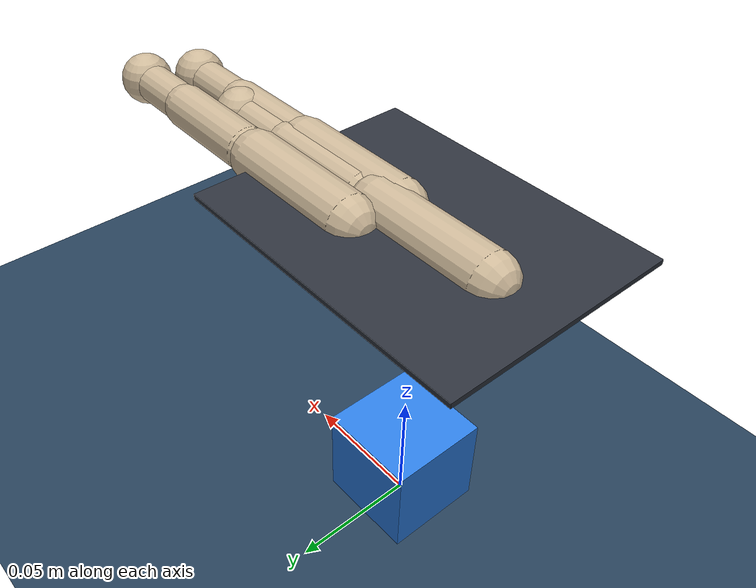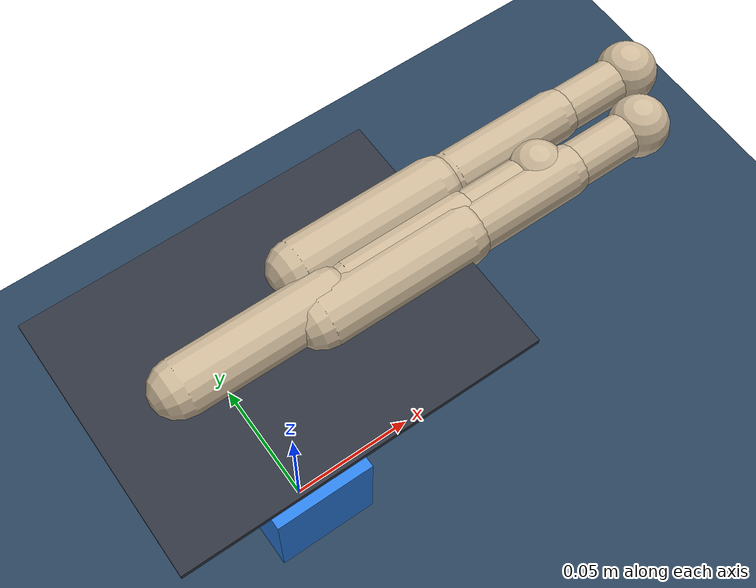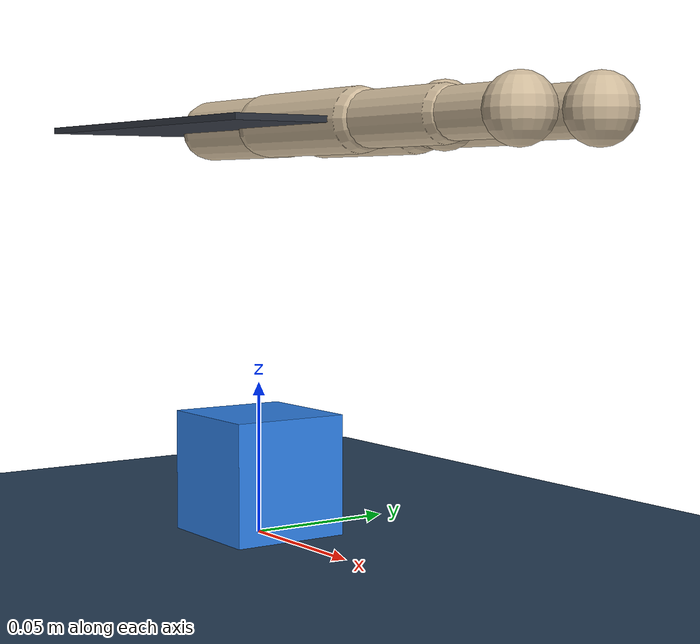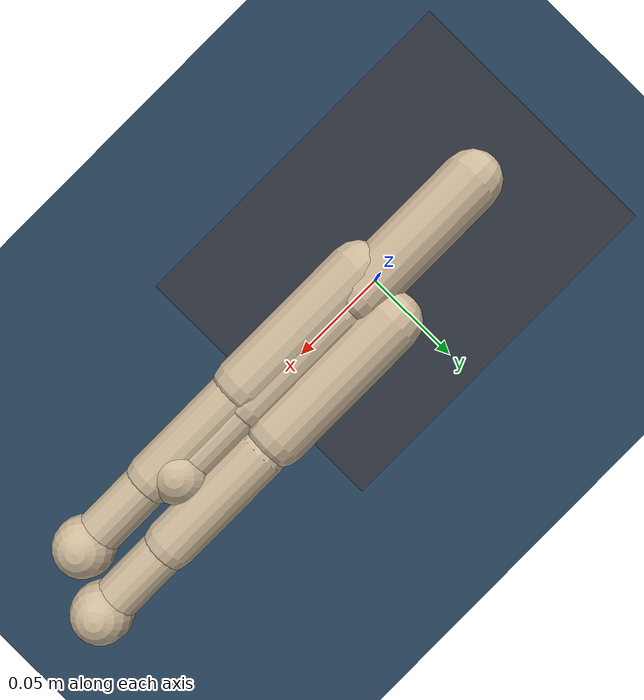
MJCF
<mujoco model="scene_cube_tn0d0019p0d0292p0d0078_ip0d0164n0d0156p0d0069_mp0d0127p0d0262p0d0000">
  <compiler angle="radian" autolimits="true" />
  <option timestep="0.002" gravity="0 0 -9.81" integrator="implicitfast" />
  <visual>
    <headlight ambient=".4 .4 .4" diffuse=".8 .8 .8" specular="0.1 0.1 0.1" />
    <map znear=".01" />
    <quality shadowsize="2048" />
    <global elevation="-15" />
  </visual>
  <default>
    <geom friction="1.8 0.15 0.01" solref="0.006 1" solimp="0.97 0.995 0.0005" />
    <motor ctrlrange="-1 1" ctrllimited="true" />
    <default class="pose">
      <joint damping="2.0" armature="0.01" />
      <position kp="4000" kv="100" forcerange="-1000 1000" />
    </default>
    <default class="ctrl">
      <joint damping="0.5" armature="0.001" />
      <position kp="30" kv="0.5" gear="1" forcerange="-10 10" ctrlrange="-1 1" />
    </default>
  </default>
  <asset>
    <texture type="skybox" builtin="gradient" rgb1="0.3 0.5 0.7" rgb2="0 0 0" width="512" height="3072" />
    <texture type="2d" name="groundplane" builtin="checker" mark="edge" rgb1="0.2 0.3 0.4" rgb2="0.1 0.2 0.3" markrgb="0.8 0.8 0.8" width="300" height="300" />
    <material name="groundplane" texture="groundplane" texuniform="true" texrepeat="5 5" reflectance="0.2" />
    <texture name="grid" type="2d" builtin="checker" rgb1="0.15 0.15 0.15" rgb2="0.25 0.25 0.25" width="256" height="256" />
    <material name="table_mat" texture="grid" texrepeat="3 3" reflectance="0.2" />
    <material name="palm_mat" rgba="0.18 0.2 0.24 1" />
    <material name="finger_mat" rgba="0.8 0.72 0.6 1" />
    <material name="object_mat" rgba="0.18 0.5 0.9 1" />
  </asset>
  <worldbody>
    <light pos="0 0 1.5" dir="0 0 -1" directional="true" diffuse=".6 .6 .6" specular=".2 .2 .2" />
    <light pos="0.5 0.5 1.0" dir="-1 -1 -1" directional="true" diffuse=".4 .4 .4" specular=".1 .1 .1" />
    <geom name="floor" type="plane" size="1.5 1.5 0.1" material="groundplane" />
    <body name="cube" pos="0.000000 0.000000 0.020000">
      <freejoint />
      <geom type="box" size="0.020000 0.020000 0.020000" density="500" material="object_mat" friction="2.4 0.2 0.02" />
    </body>
    <body gravcomp="1" name="palm_pose" pos="0 0 0.134">
      <joint class="pose" name="palm_px" type="slide" axis="1 0 0" range="-0.20 0.20" />
      <joint class="pose" name="palm_py" type="slide" axis="0 1 0" range="-0.20 0.20" />
      <joint class="pose" name="palm_pz" type="slide" axis="0 0 1" range="-0.15 0.35" />
      <joint class="pose" name="palm_rx" type="hinge" axis="1 0 0" range="-1.57 1.57" />
      <joint class="pose" name="palm_ry" type="hinge" axis="0 1 0" range="-1.57 1.57" />
      <joint class="pose" name="palm_rz" type="hinge" axis="0 0 1" range="-3.14 3.14" />
      <geom type="box" size="0.06 0.045 0.001" material="palm_mat" />
      <body name="thumb_mount" pos="-0.031916 0.00122 0">
        <inertial pos="0 0 0" mass="0.001" diaginertia="1e-6 1e-6 1e-6" />
        <body name="thumb_yaw_frame">
          <inertial pos="0 0 0" mass="0.001" diaginertia="1e-6 1e-6 1e-6" />
          <joint class="ctrl" name="thumb_yaw" type="hinge" axis="1 0 0" range="-1.1 1.1" />
          <body name="thumb_mcp_frame">
            <joint class="ctrl" name="thumb_mcp" type="hinge" axis="0 1 0" range="0 3.14" />
            <geom type="capsule" fromto="0 0 0 0.05 0 0" size="0.010" material="finger_mat" />
            <body name="thumb_len_frame" pos="0.057795 0 0">
              <geom type="capsule" fromto="0 0 0 0.04 0 0" size="0.0085" material="finger_mat" />
              <body name="thumb_pip_frame" pos="0.04 0 0">
                <joint class="ctrl" name="thumb_pip" type="hinge" axis="0 1 0" range="-1.2 0.5" />
                <geom type="capsule" fromto="0 0 0 0.03 0 0" size="0.0075" material="finger_mat" />
                <body name="thumb_tip" pos="0.03 0 0">
                  <geom type="sphere" size="0.010" material="finger_mat" friction="2.4 0.2 0.02" />
                  <geom type="sphere" pos="0 0.004 0" size="0.005" material="finger_mat" friction="2.4 0.2 0.02" />
                  <geom type="sphere" pos="0 -0.004 0" size="0.005" material="finger_mat" friction="2.4 0.2 0.02" />
                </body>
              </body>
            </body>
          </body>
        </body>
      </body>
      <body name="index_mount" pos="0.016412 0.014424 0">
        <inertial pos="0 0 0" mass="0.001" diaginertia="1e-6 1e-6 1e-6" />
        <body name="index_yaw_frame">
          <inertial pos="0 0 0" mass="0.001" diaginertia="1e-6 1e-6 1e-6" />
          <joint class="ctrl" name="index_yaw" type="hinge" axis="1 0 0" range="-1.1 1.1" />
          <body name="index_mcp_frame">
            <joint class="ctrl" name="index_mcp" type="hinge" axis="0 1 0" range="0 2.5" />
            <geom type="capsule" fromto="0 0 0 0.05 0 0" size="0.010" material="finger_mat" />
            <body name="index_len_frame" pos="0.056912 0 0">
              <geom type="capsule" fromto="0 0 0 0.04 0 0" size="0.0085" material="finger_mat" />
              <body name="index_pip_frame" pos="0.04 0 0">
                <joint class="ctrl" name="index_pip" type="hinge" axis="0 1 0" range="-1.2 1.57" />
                <geom type="capsule" fromto="0 0 0 0.03 0 0" size="0.0075" material="finger_mat" />
                <body name="index_tip" pos="0.03 0 0">
                  <geom type="sphere" size="0.010" material="finger_mat" friction="2.4 0.2 0.02" />
                  <geom type="sphere" pos="0 0.004 0" size="0.005" material="finger_mat" friction="2.4 0.2 0.02" />
                  <geom type="sphere" pos="0 -0.004 0" size="0.005" material="finger_mat" friction="2.4 0.2 0.02" />
                </body>
              </body>
            </body>
          </body>
        </body>
      </body>
      <body name="middle_mount" pos="0.012731 -0.003826 0">
        <inertial pos="0 0 0" mass="0.001" diaginertia="1e-6 1e-6 1e-6" />
        <body name="middle_yaw_frame">
          <inertial pos="0 0 0" mass="0.001" diaginertia="1e-6 1e-6 1e-6" />
          <joint class="ctrl" name="middle_yaw" type="hinge" axis="1 0 0" range="-1.1 1.1" />
          <body name="middle_mcp_frame">
            <joint class="ctrl" name="middle_mcp" type="hinge" axis="0 1 0" range="0 2.5" />
            <geom type="capsule" fromto="0 0 0 0.05 0 0" size="0.010" material="finger_mat" />
            <body name="middle_len_frame" pos="0.05 0 0">
              <geom type="capsule" fromto="0 0 0 0.04 0 0" size="0.0085" material="finger_mat" />
              <body name="middle_pip_frame" pos="0.04 0 0">
                <joint class="ctrl" name="middle_pip" type="hinge" axis="0 1 0" range="-1.2 1.57" />
                <geom type="capsule" fromto="0 0 0 0.03 0 0" size="0.0075" material="finger_mat" />
                <body name="middle_tip" pos="0.03 0 0">
                  <geom type="sphere" size="0.010" material="finger_mat" friction="2.4 0.2 0.02" />
                  <geom type="sphere" pos="0 0.004 0" size="0.005" material="finger_mat" friction="2.4 0.2 0.02" />
                  <geom type="sphere" pos="0 -0.004 0" size="0.005" material="finger_mat" friction="2.4 0.2 0.02" />
                </body>
              </body>
            </body>
          </body>
        </body>
      </body>
    </body>
  </worldbody>
  <actuator>
    <position class="pose" name="a_palm_px" joint="palm_px" ctrlrange="-0.20 0.20" />
    <position class="pose" name="a_palm_py" joint="palm_py" ctrlrange="-0.20 0.20" />
    <position class="pose" name="a_palm_pz" joint="palm_pz" ctrlrange="-0.15 0.35" />
    <position class="pose" name="a_palm_rx" joint="palm_rx" ctrlrange="-1.57 1.57" />
    <position class="pose" name="a_palm_ry" joint="palm_ry" ctrlrange="-1.57 1.57" />
    <position class="pose" name="a_palm_rz" joint="palm_rz" ctrlrange="-3.14 3.14" />
    <position class="ctrl" name="a_thumb_yaw" joint="thumb_yaw" ctrlrange="-1.1 1.1" />
    <position class="ctrl" name="a_thumb_mcp" joint="thumb_mcp" ctrlrange="0 3.14" />
    <position class="ctrl" name="a_thumb_pip" joint="thumb_pip" ctrlrange="-1.2 0.5" />
    <position class="ctrl" name="a_index_yaw" joint="index_yaw" ctrlrange="-1.1 1.1" />
    <position class="ctrl" name="a_index_mcp" joint="index_mcp" ctrlrange="0 2.5" />
    <position class="ctrl" name="a_index_pip" joint="index_pip" ctrlrange="-1.2 1.57" />
    <position class="ctrl" name="a_middle_yaw" joint="middle_yaw" ctrlrange="-1.1 1.1" />
    <position class="ctrl" name="a_middle_mcp" joint="middle_mcp" ctrlrange="0 2.5" />
    <position class="ctrl" name="a_middle_pip" joint="middle_pip" ctrlrange="-1.2 1.57" />
  </actuator>
  <keyframe>
    <key name="open" qpos="&#10;        0 0 0.02 1 0 0 0 0.02 0 0 0 0 0 0 2 -0.707 0 1.25 1 0 1.25 1&#10;      " ctrl="&#10;        0.02 0 0 0 0 0 0 2 -0.707 0 1.25 1 0 1.25 1&#10;      " />
    <key name="foundational" qpos="&#10;        0.01721158018 0.01115968601 0.02499637436 0.7584150293 0.08211110777 0.02751324652 -0.6459933673 0.02000640561 1.28378745e-06 -0.0004117701011 -1.937096863e-06 1.258905283e-06 -4.791679321e-07 0.3310231402 1.492764575 -0.9016548972 -0.214689743 1.302880231 0.973110074 -0.1261890705 1.472877666 0.9014355173&#10;      " ctrl="&#10;        0.02 0 0 0 0 0 0.05678979513 1.267608426 -0.9349968108 -0.1303668348 1.483370655 1.011268844 0.05156688664 1.511808353 0.9140770811&#10;      " />
  </keyframe>
</mujoco>
